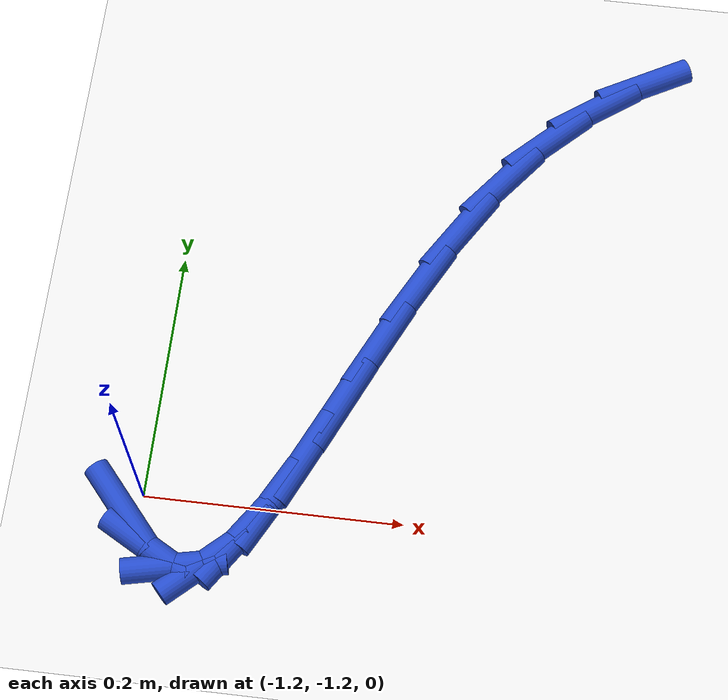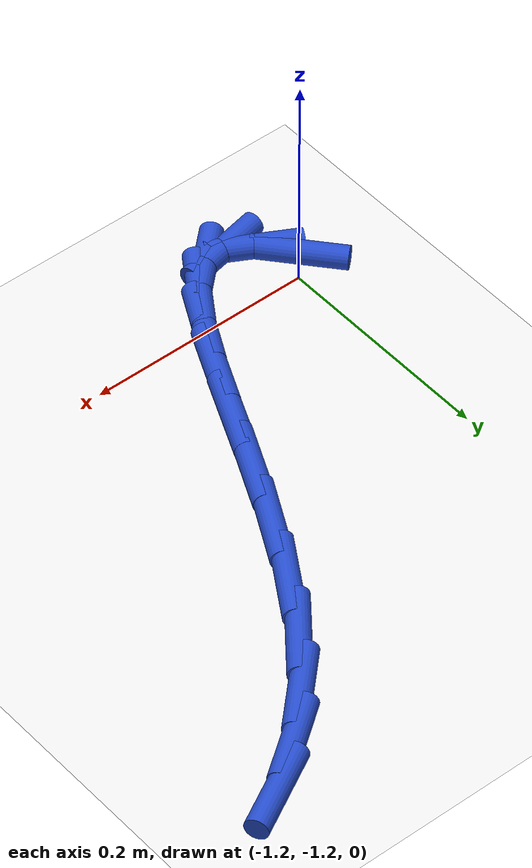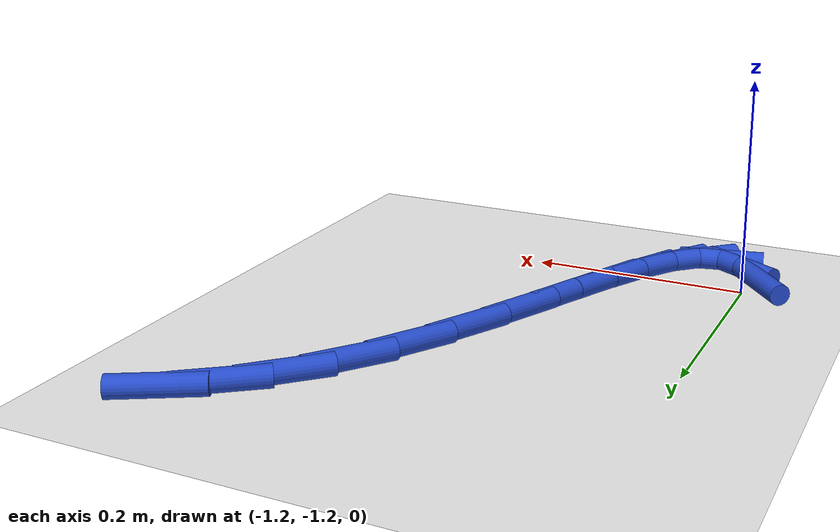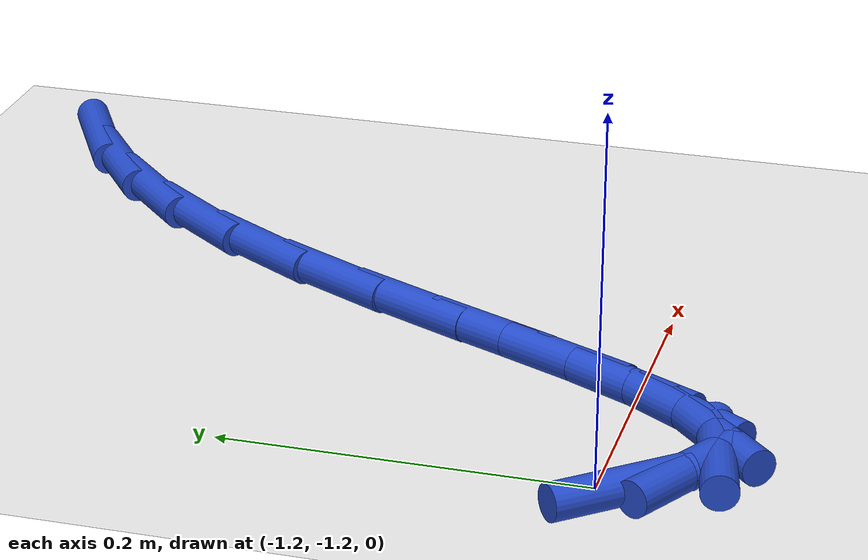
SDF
<sdf version="1.6">
 <world name="default">
  <model name="ground_plane">
   <static>1</static>
   <link name="link">
    <collision name="collision">
     <geometry><plane><normal>0 0 1</normal><size>100 100</size></plane></geometry>
     <surface><friction><ode><mu>100</mu><mu2>50</mu2></ode></friction></surface>
    </collision>
    <visual name="visual">
     <cast_shadows>0</cast_shadows>
     <geometry><plane><normal>0 0 1</normal><size>100 100</size></plane></geometry>
     <material>
      <script><uri>file://media/materials/scripts/gazebo.material</uri><name>Gazebo/WhiteGlow</name></script>
     </material>
    </visual>
   </link>
  </model>
  <model name="line">
   <link name="link_136">
    <pose>-1.2126434907734462 -1.2147192071018458 0.01 0 1.57 -0.8625281282642139</pose>
    <collision name="collision">
     <geometry><cylinder><radius>0.01</radius><length>0.08</length></cylinder></geometry>
    </collision>
    <visual name="visual">
     <material>
      <script><name>Gazebo/Blue</name><uri>file://media/materials/scripts/gazebo.material</uri></script>
     </material>
     <geometry><cylinder><radius>0.01</radius><length>0.08</length></cylinder></geometry>
    </visual>
   </link>
   <link name="link_137">
    <pose>-1.1890018185343552 -1.24232115429019 0.01 0 1.57 -0.5108491097352755</pose>
    <collision name="collision">
     <geometry><cylinder><radius>0.01</radius><length>0.08</length></cylinder></geometry>
    </collision>
    <visual name="visual">
     <material>
      <script><name>Gazebo/Blue</name><uri>file://media/materials/scripts/gazebo.material</uri></script>
     </material>
     <geometry><cylinder><radius>0.01</radius><length>0.08</length></cylinder></geometry>
    </visual>
   </link>
   <link name="link_138">
    <pose>-1.1667057531729905 -1.254817519822213 0.01 0 1.57 0.21038941153496418</pose>
    <collision name="collision">
     <geometry><cylinder><radius>0.01</radius><length>0.08</length></cylinder></geometry>
    </collision>
    <visual name="visual">
     <material>
      <script><name>Gazebo/Blue</name><uri>file://media/materials/scripts/gazebo.material</uri></script>
     </material>
     <geometry><cylinder><radius>0.01</radius><length>0.08</length></cylinder></geometry>
    </visual>
   </link>
   <link name="link_139">
    <pose>-1.145273641666789 -1.2502407013991117 0.01 0 1.57 0.7431160229974709</pose>
    <collision name="collision">
     <geometry><cylinder><radius>0.01</radius><length>0.08</length></cylinder></geometry>
    </collision>
    <visual name="visual">
     <material>
      <script><name>Gazebo/Blue</name><uri>file://media/materials/scripts/gazebo.material</uri></script>
     </material>
     <geometry><cylinder><radius>0.01</radius><length>0.08</length></cylinder></geometry>
    </visual>
   </link>
   <link name="link_140">
    <pose>-1.1242727076255576 -1.2309446272097986 0.01 0 1.57 0.9808538062495921</pose>
    <collision name="collision">
     <geometry><cylinder><radius>0.01</radius><length>0.08</length></cylinder></geometry>
    </collision>
    <visual name="visual">
     <material>
      <script><name>Gazebo/Blue</name><uri>file://media/materials/scripts/gazebo.material</uri></script>
     </material>
     <geometry><cylinder><radius>0.01</radius><length>0.08</length></cylinder></geometry>
    </visual>
   </link>
   <link name="link_141">
    <pose>-1.1032735067148078 -1.1995778361727027 0.01 0 1.57 1.087105207789734</pose>
    <collision name="collision">
     <geometry><cylinder><radius>0.01</radius><length>0.08</length></cylinder></geometry>
    </collision>
    <visual name="visual">
     <material>
      <script><name>Gazebo/Blue</name><uri>file://media/materials/scripts/gazebo.material</uri></script>
     </material>
     <geometry><cylinder><radius>0.01</radius><length>0.08</length></cylinder></geometry>
    </visual>
   </link>
   <link name="link_142">
    <pose>-1.0818465946000513 -1.1587888672062527 0.01 0 1.57 1.1326477545637648</pose>
    <collision name="collision">
     <geometry><cylinder><radius>0.01</radius><length>0.08</length></cylinder></geometry>
    </collision>
    <visual name="visual">
     <material>
      <script><name>Gazebo/Blue</name><uri>file://media/materials/scripts/gazebo.material</uri></script>
     </material>
     <geometry><cylinder><radius>0.01</radius><length>0.08</length></cylinder></geometry>
    </visual>
   </link>
   <link name="link_143">
    <pose>-1.0595625269468008 -1.1112262592288782 0.01 0 1.57 1.142946835021083</pose>
    <collision name="collision">
     <geometry><cylinder><radius>0.01</radius><length>0.08</length></cylinder></geometry>
    </collision>
    <visual name="visual">
     <material>
      <script><name>Gazebo/Blue</name><uri>file://media/materials/scripts/gazebo.material</uri></script>
     </material>
     <geometry><cylinder><radius>0.01</radius><length>0.08</length></cylinder></geometry>
    </visual>
   </link>
   <link name="link_144">
    <pose>-1.0359918594205675 -1.0595385511590083 0.01 0 1.57 1.1268311725234508</pose>
    <collision name="collision">
     <geometry><cylinder><radius>0.01</radius><length>0.08</length></cylinder></geometry>
    </collision>
    <visual name="visual">
     <material>
      <script><name>Gazebo/Blue</name><uri>file://media/materials/scripts/gazebo.material</uri></script>
     </material>
     <geometry><cylinder><radius>0.01</radius><length>0.08</length></cylinder></geometry>
    </visual>
   </link>
   <link name="link_145">
    <pose>-1.0107051476868636 -1.0063742819150714 0.01 0 1.57 1.0852972325144454</pose>
    <collision name="collision">
     <geometry><cylinder><radius>0.01</radius><length>0.08</length></cylinder></geometry>
    </collision>
    <visual name="visual">
     <material>
      <script><name>Gazebo/Blue</name><uri>file://media/materials/scripts/gazebo.material</uri></script>
     </material>
     <geometry><cylinder><radius>0.01</radius><length>0.08</length></cylinder></geometry>
    </visual>
   </link>
   <link name="link_146">
    <pose>-0.9832729474112011 -0.9543819904154963 0.01 0 1.57 1.0136945713972232</pose>
    <collision name="collision">
     <geometry><cylinder><radius>0.01</radius><length>0.08</length></cylinder></geometry>
    </collision>
    <visual name="visual">
     <material>
      <script><name>Gazebo/Blue</name><uri>file://media/materials/scripts/gazebo.material</uri></script>
     </material>
     <geometry><cylinder><radius>0.01</radius><length>0.08</length></cylinder></geometry>
    </visual>
   </link>
   <link name="link_147">
    <pose>-0.9532658142590914 -0.9062102155787122 0.01 0 1.57 0.9024290978639793</pose>
    <collision name="collision">
     <geometry><cylinder><radius>0.01</radius><length>0.08</length></cylinder></geometry>
    </collision>
    <visual name="visual">
     <material>
      <script><name>Gazebo/Blue</name><uri>file://media/materials/scripts/gazebo.material</uri></script>
     </material>
     <geometry><cylinder><radius>0.01</radius><length>0.08</length></cylinder></geometry>
    </visual>
   </link>
   <link name="link_148">
    <pose>-0.9202734156431253 -0.8644265293179207 0.01 0 1.57 0.7646121719134176</pose>
    <collision name="collision">
     <geometry><cylinder><radius>0.01</radius><length>0.08</length></cylinder></geometry>
    </collision>
    <visual name="visual">
     <material>
      <script><name>Gazebo/Blue</name><uri>file://media/materials/scripts/gazebo.material</uri></script>
     </material>
     <geometry><cylinder><radius>0.01</radius><length>0.08</length></cylinder></geometry>
    </visual>
   </link>
   <link name="link_149">
    <pose>-0.8842853293582096 -0.8299042813550813 0.01 0 1.57 0.6272623310416634</pose>
    <collision name="collision">
     <geometry><cylinder><radius>0.01</radius><length>0.08</length></cylinder></geometry>
    </collision>
    <visual name="visual">
     <material>
      <script><name>Gazebo/Blue</name><uri>file://media/materials/scripts/gazebo.material</uri></script>
     </material>
     <geometry><cylinder><radius>0.01</radius><length>0.08</length></cylinder></geometry>
    </visual>
   </link>
   <link name="link_150">
    <pose>-0.8456701776040403 -0.8019109980315516 0.01 0 1.57 0.49884713648683715</pose>
    <collision name="collision">
     <geometry><cylinder><radius>0.01</radius><length>0.08</length></cylinder></geometry>
    </collision>
    <visual name="visual">
     <material>
      <script><name>Gazebo/Blue</name><uri>file://media/materials/scripts/gazebo.material</uri></script>
     </material>
     <geometry><cylinder><radius>0.01</radius><length>0.08</length></cylinder></geometry>
    </visual>
   </link>
  </model>
 </world>
</sdf>
